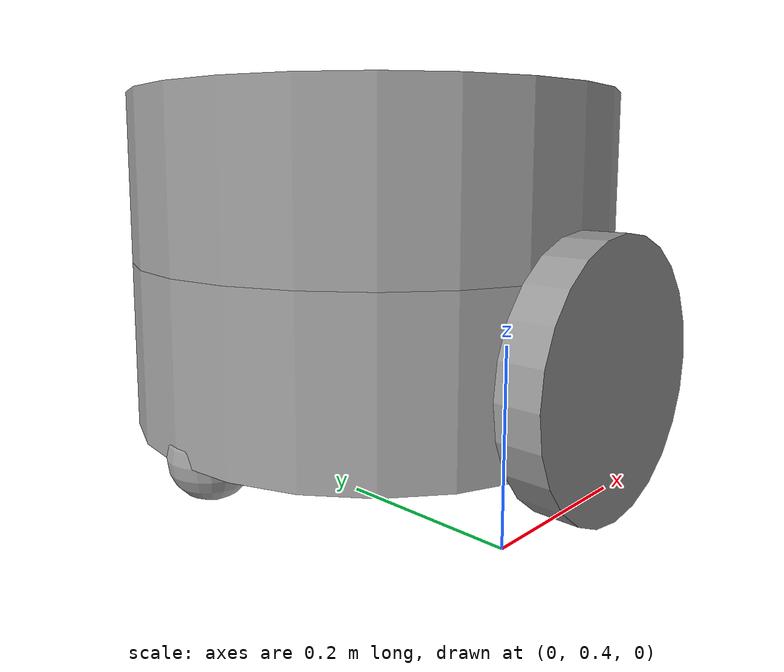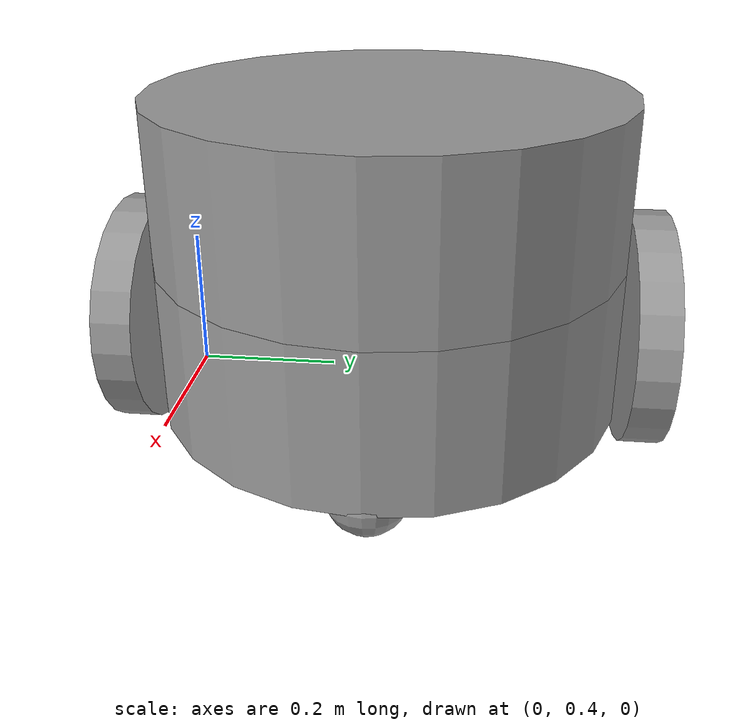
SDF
<?xml version='1.0'?>
<sdf version='1.6'>
  <model name='my_robot_model'>
    <link name='link_0'>
      <inertial>
        <mass>1</mass>
        <inertia>
          <ixx>0.145833</ixx>
          <ixy>0</ixy>
          <ixz>0</ixz>
          <iyy>0.145833</iyy>
          <iyz>0</iyz>
          <izz>0.125</izz>
        </inertia>
        <pose frame=''>0 0 0 0 -0 0</pose>
      </inertial>
      <pose frame=''>0.129042 0.699504 0.35 0 -0 0</pose>
      <gravity>1</gravity>
      <self_collide>0</self_collide>
      <kinematic>0</kinematic>
      <enable_wind>0</enable_wind>
      <visual name='visual'>
        <pose frame=''>0 0 0 0 -0 0</pose>
        <geometry>
          <cylinder>
            <radius>0.3</radius>
            <length>0.2</length>
          </cylinder>
        </geometry>
        <material>
          <lighting>1</lighting>
          <script>
            <uri>file://media/materials/scripts/gazebo.material</uri>
            <name>Gazebo/Grey</name>
          </script>
          <shader type='vertex'>
            <normal_map>__default__</normal_map>
          </shader>
          <ambient>0.3 0.3 0.3 1</ambient>
          <diffuse>0.7 0.7 0.7 1</diffuse>
          <specular>0.01 0.01 0.01 1</specular>
          <emissive>0 0 0 1</emissive>
        </material>
        <transparency>0</transparency>
        <cast_shadows>1</cast_shadows>
      </visual>
      <collision name='collision'>
        <laser_retro>0</laser_retro>
        <max_contacts>10</max_contacts>
        <pose frame=''>0 0 0 0 -0 0</pose>
        <geometry>
          <cylinder>
            <radius>0.3</radius>
            <length>0.2</length>
          </cylinder>
        </geometry>
        <surface>
          <friction>
            <ode>
              <mu>1</mu>
              <mu2>1</mu2>
              <fdir1>0 0 0</fdir1>
              <slip1>0</slip1>
              <slip2>0</slip2>
            </ode>
            <torsional>
              <coefficient>1</coefficient>
              <patch_radius>0</patch_radius>
              <surface_radius>0</surface_radius>
              <use_patch_radius>1</use_patch_radius>
              <ode>
                <slip>0</slip>
              </ode>
            </torsional>
          </friction>
          <bounce>
            <restitution_coefficient>0</restitution_coefficient>
            <threshold>1e+06</threshold>
          </bounce>
          <contact>
            <collide_without_contact>0</collide_without_contact>
            <collide_without_contact_bitmask>1</collide_without_contact_bitmask>
            <collide_bitmask>1</collide_bitmask>
            <ode>
              <soft_cfm>0</soft_cfm>
              <soft_erp>0.2</soft_erp>
              <kp>1e+13</kp>
              <kd>1</kd>
              <max_vel>0.01</max_vel>
              <min_depth>0</min_depth>
            </ode>
            <bullet>
              <split_impulse>1</split_impulse>
              <split_impulse_penetration_threshold>-0.01</split_impulse_penetration_threshold>
              <soft_cfm>0</soft_cfm>
              <soft_erp>0.2</soft_erp>
              <kp>1e+13</kp>
              <kd>1</kd>
            </bullet>
          </contact>
        </surface>
      </collision>
    </link>
    <link name='link_0_0'>
      <inertial>
        <mass>1</mass>
        <inertia>
          <ixx>0.1</ixx>
          <ixy>0</ixy>
          <ixz>0</ixz>
          <iyy>0.1</iyy>
          <iyz>0</iyz>
          <izz>0.1</izz>
        </inertia>
        <pose frame=''>0 0 0 0 -0 0</pose>
      </inertial>
      <pose frame=''>0.38 0.7 0.05 0 -0 0</pose>
      <gravity>1</gravity>
      <self_collide>0</self_collide>
      <kinematic>0</kinematic>
      <enable_wind>0</enable_wind>
      <visual name='visual'>
        <pose frame=''>0 0 0 0 -0 0</pose>
        <geometry>
          <sphere>
            <radius>0.05</radius>
          </sphere>
        </geometry>
        <material>
          <lighting>1</lighting>
          <script>
            <uri>file://media/materials/scripts/gazebo.material</uri>
            <name>Gazebo/Grey</name>
          </script>
          <shader type='vertex'>
            <normal_map>__default__</normal_map>
          </shader>
          <ambient>0.3 0.3 0.3 1</ambient>
          <diffuse>0.7 0.7 0.7 1</diffuse>
          <specular>0.01 0.01 0.01 1</specular>
          <emissive>0 0 0 1</emissive>
        </material>
        <transparency>0</transparency>
        <cast_shadows>1</cast_shadows>
      </visual>
      <collision name='collision'>
        <laser_retro>0</laser_retro>
        <max_contacts>10</max_contacts>
        <pose frame=''>0 0 0 0 -0 0</pose>
        <geometry>
          <sphere>
            <radius>0.05</radius>
          </sphere>
        </geometry>
        <surface>
          <friction>
            <ode>
              <mu>0</mu>
              <mu2>0</mu2>
              <fdir1>0 0 0</fdir1>
              <slip1>0</slip1>
              <slip2>0</slip2>
            </ode>
            <torsional>
              <coefficient>1</coefficient>
              <patch_radius>0</patch_radius>
              <surface_radius>0</surface_radius>
              <use_patch_radius>1</use_patch_radius>
              <ode>
                <slip>0</slip>
              </ode>
            </torsional>
          </friction>
          <bounce>
            <restitution_coefficient>0</restitution_coefficient>
            <threshold>1e+06</threshold>
          </bounce>
          <contact>
            <collide_without_contact>0</collide_without_contact>
            <collide_without_contact_bitmask>1</collide_without_contact_bitmask>
            <collide_bitmask>1</collide_bitmask>
            <ode>
              <soft_cfm>0</soft_cfm>
              <soft_erp>0.2</soft_erp>
              <kp>1e+13</kp>
              <kd>1</kd>
              <max_vel>0.01</max_vel>
              <min_depth>0</min_depth>
            </ode>
            <bullet>
              <split_impulse>1</split_impulse>
              <split_impulse_penetration_threshold>-0.01</split_impulse_penetration_threshold>
              <soft_cfm>0</soft_cfm>
              <soft_erp>0.2</soft_erp>
              <kp>1e+13</kp>
              <kd>1</kd>
            </bullet>
          </contact>
        </surface>
      </collision>
    </link>
    <link name='link_0_0_clone'>
      <inertial>
        <mass>1</mass>
        <inertia>
          <ixx>0.1</ixx>
          <ixy>0</ixy>
          <ixz>0</ixz>
          <iyy>0.1</iyy>
          <iyz>0</iyz>
          <izz>0.1</izz>
        </inertia>
        <pose frame=''>0 0 0 0 -0 0</pose>
      </inertial>
      <pose frame=''>-0.125 0.7 0.05 0 -0 0</pose>
      <gravity>1</gravity>
      <self_collide>0</self_collide>
      <kinematic>0</kinematic>
      <enable_wind>0</enable_wind>
      <visual name='visual_0'>
        <pose frame=''>0 0 0 0 -0 0</pose>
        <geometry>
          <sphere>
            <radius>0.05</radius>
          </sphere>
        </geometry>
        <material>
          <lighting>1</lighting>
          <script>
            <uri>file://media/materials/scripts/gazebo.material</uri>
            <name>Gazebo/Grey</name>
          </script>
          <shader type='vertex'>
            <normal_map>__default__</normal_map>
          </shader>
          <ambient>0.3 0.3 0.3 1</ambient>
          <diffuse>0.7 0.7 0.7 1</diffuse>
          <specular>0.01 0.01 0.01 1</specular>
          <emissive>0 0 0 1</emissive>
        </material>
        <transparency>0</transparency>
        <cast_shadows>1</cast_shadows>
      </visual>
      <collision name='collision'>
        <laser_retro>0</laser_retro>
        <max_contacts>10</max_contacts>
        <pose frame=''>0 0 0 0 -0 0</pose>
        <geometry>
          <sphere>
            <radius>0.05</radius>
          </sphere>
        </geometry>
        <surface>
          <friction>
            <ode>
              <mu>0</mu>
              <mu2>0</mu2>
              <fdir1>0 0 0</fdir1>
              <slip1>0</slip1>
              <slip2>0</slip2>
            </ode>
            <torsional>
              <coefficient>1</coefficient>
              <patch_radius>0</patch_radius>
              <surface_radius>0</surface_radius>
              <use_patch_radius>1</use_patch_radius>
              <ode>
                <slip>0</slip>
              </ode>
            </torsional>
          </friction>
          <bounce>
            <restitution_coefficient>0</restitution_coefficient>
            <threshold>1e+06</threshold>
          </bounce>
          <contact>
            <collide_without_contact>0</collide_without_contact>
            <collide_without_contact_bitmask>1</collide_without_contact_bitmask>
            <collide_bitmask>1</collide_bitmask>
            <ode>
              <soft_cfm>0</soft_cfm>
              <soft_erp>0.2</soft_erp>
              <kp>1e+13</kp>
              <kd>1</kd>
              <max_vel>0.01</max_vel>
              <min_depth>0</min_depth>
            </ode>
            <bullet>
              <split_impulse>1</split_impulse>
              <split_impulse_penetration_threshold>-0.01</split_impulse_penetration_threshold>
              <soft_cfm>0</soft_cfm>
              <soft_erp>0.2</soft_erp>
              <kp>1e+13</kp>
              <kd>1</kd>
            </bullet>
          </contact>
        </surface>
      </collision>
    </link>
    <link name='link_0_clone'>
      <inertial>
        <mass>1</mass>
        <inertia>
          <ixx>0.145833</ixx>
          <ixy>0</ixy>
          <ixz>0</ixz>
          <iyy>0.145833</iyy>
          <iyz>0</iyz>
          <izz>0.125</izz>
        </inertia>
        <pose frame=''>0 0 0 0 -0 0</pose>
      </inertial>
      <pose frame=''>0.129042 0.699504 0.15 0 -0 0</pose>
      <gravity>1</gravity>
      <self_collide>0</self_collide>
      <kinematic>0</kinematic>
      <enable_wind>0</enable_wind>
      <visual name='visual'>
        <pose frame=''>0 0 0 0 -0 0</pose>
        <geometry>
          <cylinder>
            <radius>0.3</radius>
            <length>0.2</length>
          </cylinder>
        </geometry>
        <material>
          <lighting>1</lighting>
          <script>
            <uri>file://media/materials/scripts/gazebo.material</uri>
            <name>Gazebo/Grey</name>
          </script>
          <shader type='vertex'>
            <normal_map>__default__</normal_map>
          </shader>
          <ambient>0.3 0.3 0.3 1</ambient>
          <diffuse>0.7 0.7 0.7 1</diffuse>
          <specular>0.01 0.01 0.01 1</specular>
          <emissive>0 0 0 1</emissive>
        </material>
        <transparency>0</transparency>
        <cast_shadows>1</cast_shadows>
      </visual>
      <collision name='collision'>
        <laser_retro>0</laser_retro>
        <max_contacts>10</max_contacts>
        <pose frame=''>0 0 0 0 -0 0</pose>
        <geometry>
          <cylinder>
            <radius>0.3</radius>
            <length>0.2</length>
          </cylinder>
        </geometry>
        <surface>
          <friction>
            <ode>
              <mu>1</mu>
              <mu2>1</mu2>
              <fdir1>0 0 0</fdir1>
              <slip1>0</slip1>
              <slip2>0</slip2>
            </ode>
            <torsional>
              <coefficient>1</coefficient>
              <patch_radius>0</patch_radius>
              <surface_radius>0</surface_radius>
              <use_patch_radius>1</use_patch_radius>
              <ode>
                <slip>0</slip>
              </ode>
            </torsional>
          </friction>
          <bounce>
            <restitution_coefficient>0</restitution_coefficient>
            <threshold>1e+06</threshold>
          </bounce>
          <contact>
            <collide_without_contact>0</collide_without_contact>
            <collide_without_contact_bitmask>1</collide_without_contact_bitmask>
            <collide_bitmask>1</collide_bitmask>
            <ode>
              <soft_cfm>0</soft_cfm>
              <soft_erp>0.2</soft_erp>
              <kp>1e+13</kp>
              <kd>1</kd>
              <max_vel>0.01</max_vel>
              <min_depth>0</min_depth>
            </ode>
            <bullet>
              <split_impulse>1</split_impulse>
              <split_impulse_penetration_threshold>-0.01</split_impulse_penetration_threshold>
              <soft_cfm>0</soft_cfm>
              <soft_erp>0.2</soft_erp>
              <kp>1e+13</kp>
              <kd>1</kd>
            </bullet>
          </contact>
        </surface>
      </collision>
    </link>
    <link name='link_2'>
      <inertial>
        <mass>1</mass>
        <inertia>
          <ixx>0.145833</ixx>
          <ixy>0</ixy>
          <ixz>0</ixz>
          <iyy>0.145833</iyy>
          <iyz>0</iyz>
          <izz>0.125</izz>
        </inertia>
        <pose frame=''>0 0 0 0 -0 0</pose>
      </inertial>
      <pose frame=''>0.129042 0.37449 0.15 1.5707 -0 0</pose>
      <gravity>1</gravity>
      <self_collide>0</self_collide>
      <kinematic>0</kinematic>
      <enable_wind>0</enable_wind>
      <visual name='visual'>
        <pose frame=''>0 0 0 0 -0 0</pose>
        <geometry>
          <cylinder>
            <radius>0.15</radius>
            <length>0.05</length>
          </cylinder>
        </geometry>
        <material>
          <lighting>1</lighting>
          <script>
            <uri>file://media/materials/scripts/gazebo.material</uri>
            <name>Gazebo/Grey</name>
          </script>
          <shader type='vertex'>
            <normal_map>__default__</normal_map>
          </shader>
          <ambient>0.3 0.3 0.3 1</ambient>
          <diffuse>0.7 0.7 0.7 1</diffuse>
          <specular>0.01 0.01 0.01 1</specular>
          <emissive>0 0 0 1</emissive>
        </material>
        <transparency>0</transparency>
        <cast_shadows>1</cast_shadows>
      </visual>
      <collision name='collision'>
        <laser_retro>0</laser_retro>
        <max_contacts>10</max_contacts>
        <pose frame=''>0 0 0 0 -0 0</pose>
        <geometry>
          <cylinder>
            <radius>0.15</radius>
            <length>0.05</length>
          </cylinder>
        </geometry>
        <surface>
          <friction>
            <ode>
              <mu>1</mu>
              <mu2>1</mu2>
              <fdir1>0 0 0</fdir1>
              <slip1>0</slip1>
              <slip2>0</slip2>
            </ode>
            <torsional>
              <coefficient>1</coefficient>
              <patch_radius>0</patch_radius>
              <surface_radius>0</surface_radius>
              <use_patch_radius>1</use_patch_radius>
              <ode>
                <slip>0</slip>
              </ode>
            </torsional>
          </friction>
          <bounce>
            <restitution_coefficient>0</restitution_coefficient>
            <threshold>1e+06</threshold>
          </bounce>
          <contact>
            <collide_without_contact>0</collide_without_contact>
            <collide_without_contact_bitmask>1</collide_without_contact_bitmask>
            <collide_bitmask>1</collide_bitmask>
            <ode>
              <soft_cfm>0</soft_cfm>
              <soft_erp>0.2</soft_erp>
              <kp>1e+13</kp>
              <kd>1</kd>
              <max_vel>0.01</max_vel>
              <min_depth>0</min_depth>
            </ode>
            <bullet>
              <split_impulse>1</split_impulse>
              <split_impulse_penetration_threshold>-0.01</split_impulse_penetration_threshold>
              <soft_cfm>0</soft_cfm>
              <soft_erp>0.2</soft_erp>
              <kp>1e+13</kp>
              <kd>1</kd>
            </bullet>
          </contact>
        </surface>
      </collision>
    </link>
    <link name='link_2_clone'>
      <inertial>
        <mass>1</mass>
        <inertia>
          <ixx>0.145833</ixx>
          <ixy>0</ixy>
          <ixz>0</ixz>
          <iyy>0.145833</iyy>
          <iyz>0</iyz>
          <izz>0.125</izz>
        </inertia>
        <pose frame=''>0 0 0 0 -0 0</pose>
      </inertial>
      <pose frame=''>0.129042 1.02452 0.15 1.5707 -0 0</pose>
      <gravity>1</gravity>
      <self_collide>0</self_collide>
      <kinematic>0</kinematic>
      <enable_wind>0</enable_wind>
      <visual name='visual'>
        <pose frame=''>0 0 0 0 -0 0</pose>
        <geometry>
          <cylinder>
            <radius>0.15</radius>
            <length>0.05</length>
          </cylinder>
        </geometry>
        <material>
          <lighting>1</lighting>
          <script>
            <uri>file://media/materials/scripts/gazebo.material</uri>
            <name>Gazebo/Grey</name>
          </script>
          <shader type='vertex'>
            <normal_map>__default__</normal_map>
          </shader>
          <ambient>0.3 0.3 0.3 1</ambient>
          <diffuse>0.7 0.7 0.7 1</diffuse>
          <specular>0.01 0.01 0.01 1</specular>
          <emissive>0 0 0 1</emissive>
        </material>
        <transparency>0</transparency>
        <cast_shadows>1</cast_shadows>
      </visual>
      <collision name='collision'>
        <laser_retro>0</laser_retro>
        <max_contacts>10</max_contacts>
        <pose frame=''>0 0 0 0 -0 0</pose>
        <geometry>
          <cylinder>
            <radius>0.15</radius>
            <length>0.05</length>
          </cylinder>
        </geometry>
        <surface>
          <friction>
            <ode>
              <mu>1</mu>
              <mu2>1</mu2>
              <fdir1>0 0 0</fdir1>
              <slip1>0</slip1>
              <slip2>0</slip2>
            </ode>
            <torsional>
              <coefficient>1</coefficient>
              <patch_radius>0</patch_radius>
              <surface_radius>0</surface_radius>
              <use_patch_radius>1</use_patch_radius>
              <ode>
                <slip>0</slip>
              </ode>
            </torsional>
          </friction>
          <bounce>
            <restitution_coefficient>0</restitution_coefficient>
            <threshold>1e+06</threshold>
          </bounce>
          <contact>
            <collide_without_contact>0</collide_without_contact>
            <collide_without_contact_bitmask>1</collide_without_contact_bitmask>
            <collide_bitmask>1</collide_bitmask>
            <ode>
              <soft_cfm>0</soft_cfm>
              <soft_erp>0.2</soft_erp>
              <kp>1e+13</kp>
              <kd>1</kd>
              <max_vel>0.01</max_vel>
              <min_depth>0</min_depth>
            </ode>
            <bullet>
              <split_impulse>1</split_impulse>
              <split_impulse_penetration_threshold>-0.01</split_impulse_penetration_threshold>
              <soft_cfm>0</soft_cfm>
              <soft_erp>0.2</soft_erp>
              <kp>1e+13</kp>
              <kd>1</kd>
            </bullet>
          </contact>
        </surface>
      </collision>
    </link>
    <joint name='link_0_JOINT_0' type='revolute'>
      <parent>link_0</parent>
      <child>link_0_clone</child>
      <pose frame=''>0 0 0 0 -0 0</pose>
      <axis>
        <xyz>0 0 1</xyz>
        <use_parent_model_frame>0</use_parent_model_frame>
        <limit>
          <lower>-1.79769e+308</lower>
          <upper>1.79769e+308</upper>
          <effort>-1</effort>
          <velocity>-1</velocity>
        </limit>
        <dynamics>
          <spring_reference>0</spring_reference>
          <spring_stiffness>0</spring_stiffness>
          <damping>0</damping>
          <friction>0</friction>
        </dynamics>
      </axis>
      <physics>
        <ode>
          <limit>
            <cfm>0</cfm>
            <erp>0.2</erp>
          </limit>
          <suspension>
            <cfm>0</cfm>
            <erp>0.2</erp>
          </suspension>
        </ode>
      </physics>
    </joint>
    <joint name='link_0_clone_JOINT_1_0' type='fixed'>
      <parent>link_0_clone</parent>
      <child>link_0_0</child>
      <pose frame=''>0 0 0 0 -0 0</pose>
      <physics>
        <ode>
          <limit>
            <cfm>0</cfm>
            <erp>0.2</erp>
          </limit>
          <suspension>
            <cfm>0</cfm>
            <erp>0.2</erp>
          </suspension>
        </ode>
      </physics>
    </joint>
    <joint name='link_0_clone_JOINT_1' type='revolute'>
      <parent>link_0_clone</parent>
      <child>link_2</child>
      <pose frame=''>0 0 0 0 -0 0</pose>
      <axis>
        <xyz>0 0 1</xyz>
        <use_parent_model_frame>0</use_parent_model_frame>
        <limit>
          <lower>-1.79769e+308</lower>
          <upper>1.79769e+308</upper>
          <effort>-1</effort>
          <velocity>-1</velocity>
        </limit>
        <dynamics>
          <spring_reference>0</spring_reference>
          <spring_stiffness>0</spring_stiffness>
          <damping>0</damping>
          <friction>0</friction>
        </dynamics>
      </axis>
      <physics>
        <ode>
          <limit>
            <cfm>0</cfm>
            <erp>0.2</erp>
          </limit>
          <suspension>
            <cfm>0</cfm>
            <erp>0.2</erp>
          </suspension>
        </ode>
      </physics>
    </joint>
    <joint name='link_0_clone_JOINT_2_0' type='fixed'>
      <parent>link_0_clone</parent>
      <child>link_0_0_clone</child>
      <pose frame=''>0 0 0 0 -0 0</pose>
      <physics>
        <ode>
          <limit>
            <cfm>0</cfm>
            <erp>0.2</erp>
          </limit>
          <suspension>
            <cfm>0</cfm>
            <erp>0.2</erp>
          </suspension>
        </ode>
      </physics>
    </joint>
    <joint name='link_0_clone_JOINT_2' type='revolute'>
      <parent>link_0_clone</parent>
      <child>link_2_clone</child>
      <pose frame=''>0 0 0 0 -0 0</pose>
      <axis>
        <xyz>0 0 1</xyz>
        <use_parent_model_frame>0</use_parent_model_frame>
        <limit>
          <lower>-1.79769e+308</lower>
          <upper>1.79769e+308</upper>
          <effort>-1</effort>
          <velocity>-1</velocity>
        </limit>
        <dynamics>
          <spring_reference>0</spring_reference>
          <spring_stiffness>0</spring_stiffness>
          <damping>0</damping>
          <friction>0</friction>
        </dynamics>
      </axis>
      <physics>
        <ode>
          <limit>
            <cfm>0</cfm>
            <erp>0.2</erp>
          </limit>
          <suspension>
            <cfm>0</cfm>
            <erp>0.2</erp>
          </suspension>
        </ode>
      </physics>
    </joint>
    <static>0</static>
    <allow_auto_disable>1</allow_auto_disable>
  </model>
</sdf>
